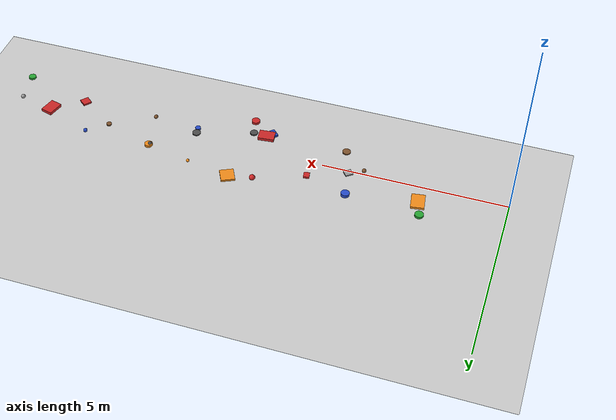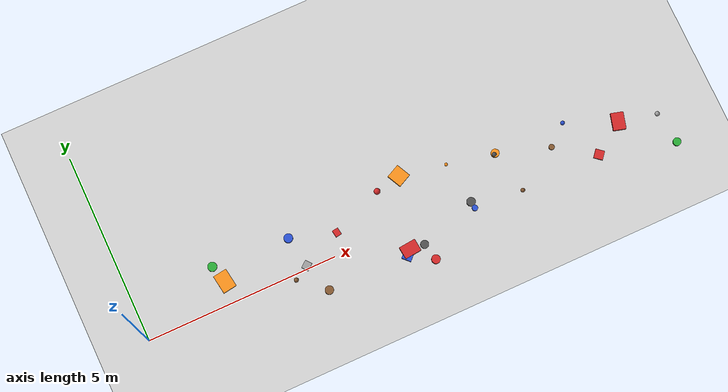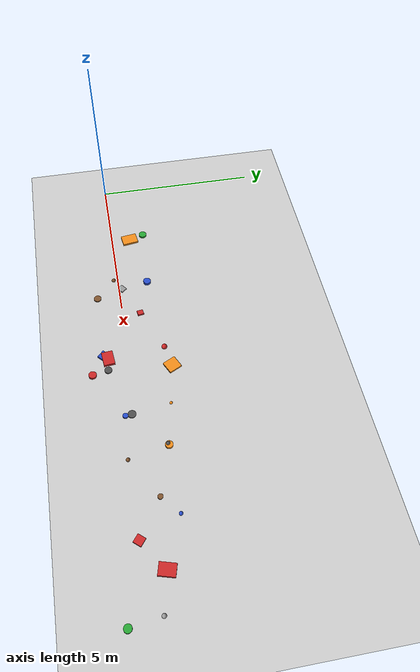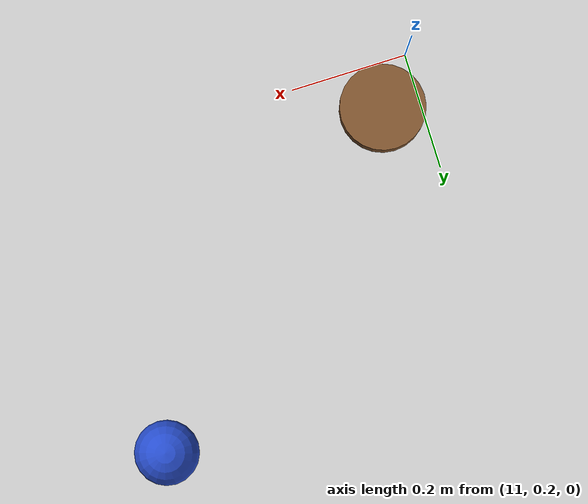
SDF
<?xml version="1.0" ?>
<!-- 由 omni_world.py 自动生成: scene=random seed=4 -->
<sdf version="1.5">
  <world name="random">
    <physics type="ode">
      <type>world</type>
      <max_step_size>0.001</max_step_size>
      <real_time_update_rate>1000</real_time_update_rate>
      <iters>500</iters>
    </physics>
    <include><uri>model://sun</uri></include>
    <include><uri>model://ground_plane</uri></include>
    <model name="r_box_0">
      <static>true</static>
      <pose>5.291 0.531 0.027 0.0000 0.0000 1.7260</pose>
      <link name="link">
        <collision name="collision">
          <geometry><box><size>0.182 0.157 0.054</size></box></geometry>
          <surface><friction><ode><mu>1.0</mu><mu2>1.0</mu2></ode></friction></surface>
        </collision>
        <visual name="visual">
          <geometry><box><size>0.182 0.157 0.054</size></box></geometry>
          <material><script><uri>file://media/materials/scripts/gazebo.material</uri>
            <name>Gazebo/Red</name></script></material>
        </visual>
      </link>
    </model>
    <model name="r_box_1">
      <static>true</static>
      <pose>4.274 0.088 0.020 0.0000 0.0000 0.6736</pose>
      <link name="link">
        <collision name="collision">
          <geometry><box><size>0.210 0.187 0.039</size></box></geometry>
          <surface><friction><ode><mu>1.0</mu><mu2>1.0</mu2></ode></friction></surface>
        </collision>
        <visual name="visual">
          <geometry><box><size>0.210 0.187 0.039</size></box></geometry>
          <material><script><uri>file://media/materials/scripts/gazebo.material</uri>
            <name>Gazebo/Grey</name></script></material>
        </visual>
      </link>
    </model>
    <model name="r_sph_2">
      <static>true</static>
      <pose>11.583 0.721 0.017 0 0 0</pose>
      <link name="link">
        <collision name="collision">
          <geometry><sphere><radius>0.055</radius></sphere></geometry>
          <surface><friction><ode><mu>1.0</mu><mu2>1.0</mu2></ode></friction></surface>
        </collision>
        <visual name="visual">
          <geometry><sphere><radius>0.055</radius></sphere></geometry>
          <material><script><uri>file://media/materials/scripts/gazebo.material</uri>
            <name>Gazebo/Blue</name></script></material>
        </visual>
      </link>
    </model>
    <model name="r_box_3">
      <static>true</static>
      <pose>12.060 -0.390 0.024 0.0000 0.0000 0.8796</pose>
      <link name="link">
        <collision name="collision">
          <geometry><box><size>0.237 0.237 0.047</size></box></geometry>
          <surface><friction><ode><mu>1.0</mu><mu2>1.0</mu2></ode></friction></surface>
        </collision>
        <visual name="visual">
          <geometry><box><size>0.237 0.237 0.047</size></box></geometry>
          <material><script><uri>file://media/materials/scripts/gazebo.material</uri>
            <name>Gazebo/Red</name></script></material>
        </visual>
      </link>
    </model>
    <model name="r_box_4">
      <static>true</static>
      <pose>12.861 0.174 0.041 0.0000 0.0000 1.3004</pose>
      <link name="link">
        <collision name="collision">
          <geometry><box><size>0.447 0.328 0.082</size></box></geometry>
          <surface><friction><ode><mu>1.0</mu><mu2>1.0</mu2></ode></friction></surface>
        </collision>
        <visual name="visual">
          <geometry><box><size>0.447 0.328 0.082</size></box></geometry>
          <material><script><uri>file://media/materials/scripts/gazebo.material</uri>
            <name>Gazebo/Red</name></script></material>
        </visual>
      </link>
    </model>
    <model name="r_cyl_5">
      <static>true</static>
      <pose>7.142 -0.640 0.019 0 0 0</pose>
      <link name="link">
        <collision name="collision">
          <geometry><cylinder><radius>0.106</radius><length>0.038</length></cylinder></geometry>
          <surface><friction><ode><mu>1.0</mu><mu2>1.0</mu2></ode></friction></surface>
        </collision>
        <visual name="visual">
          <geometry><cylinder><radius>0.106</radius><length>0.038</length></cylinder></geometry>
          <material><script><uri>file://media/materials/scripts/gazebo.material</uri>
            <name>Gazebo/DarkGrey</name></script></material>
        </visual>
      </link>
    </model>
    <model name="r_box_6">
      <static>true</static>
      <pose>7.283 1.194 0.028 0.0000 0.0000 0.4557</pose>
      <link name="link">
        <collision name="collision">
          <geometry><box><size>0.377 0.395 0.056</size></box></geometry>
          <surface><friction><ode><mu>1.0</mu><mu2>1.0</mu2></ode></friction></surface>
        </collision>
        <visual name="visual">
          <geometry><box><size>0.377 0.395 0.056</size></box></geometry>
          <material><script><uri>file://media/materials/scripts/gazebo.material</uri>
            <name>Gazebo/Orange</name></script></material>
        </visual>
      </link>
    </model>
    <model name="r_box_7">
      <static>true</static>
      <pose>6.660 -0.714 0.032 0.0000 0.0000 2.3466</pose>
      <link name="link">
        <collision name="collision">
          <geometry><box><size>0.247 0.275 0.064</size></box></geometry>
          <surface><friction><ode><mu>1.0</mu><mu2>1.0</mu2></ode></friction></surface>
        </collision>
        <visual name="visual">
          <geometry><box><size>0.247 0.275 0.064</size></box></geometry>
          <material><script><uri>file://media/materials/scripts/gazebo.material</uri>
            <name>Gazebo/Blue</name></script></material>
        </visual>
      </link>
    </model>
    <model name="r_sph_8">
      <static>true</static>
      <pose>8.482 0.970 0.014 0 0 0</pose>
      <link name="link">
        <collision name="collision">
          <geometry><sphere><radius>0.043</radius></sphere></geometry>
          <surface><friction><ode><mu>1.0</mu><mu2>1.0</mu2></ode></friction></surface>
        </collision>
        <visual name="visual">
          <geometry><sphere><radius>0.043</radius></sphere></geometry>
          <material><script><uri>file://media/materials/scripts/gazebo.material</uri>
            <name>Gazebo/Orange</name></script></material>
        </visual>
      </link>
    </model>
    <model name="r_cyl_9">
      <static>true</static>
      <pose>11.065 0.277 0.018 0 0 0</pose>
      <link name="link">
        <collision name="collision">
          <geometry><cylinder><radius>0.073</radius><length>0.037</length></cylinder></geometry>
          <surface><friction><ode><mu>1.0</mu><mu2>1.0</mu2></ode></friction></surface>
        </collision>
        <visual name="visual">
          <geometry><cylinder><radius>0.073</radius><length>0.037</length></cylinder></geometry>
          <material><script><uri>file://media/materials/scripts/gazebo.material</uri>
            <name>Gazebo/Brown</name></script></material>
        </visual>
      </link>
    </model>
    <model name="r_cyl_10">
      <static>true</static>
      <pose>7.238 -1.097 0.034 0 0 0</pose>
      <link name="link">
        <collision name="collision">
          <geometry><cylinder><radius>0.113</radius><length>0.069</length></cylinder></geometry>
          <surface><friction><ode><mu>1.0</mu><mu2>1.0</mu2></ode></friction></surface>
        </collision>
        <visual name="visual">
          <geometry><cylinder><radius>0.113</radius><length>0.069</length></cylinder></geometry>
          <material><script><uri>file://media/materials/scripts/gazebo.material</uri>
            <name>Gazebo/Red</name></script></material>
        </visual>
      </link>
    </model>
    <model name="r_sph_11">
      <static>true</static>
      <pose>9.940 -0.415 0.021 0 0 0</pose>
      <link name="link">
        <collision name="collision">
          <geometry><sphere><radius>0.056</radius></sphere></geometry>
          <surface><friction><ode><mu>1.0</mu><mu2>1.0</mu2></ode></friction></surface>
        </collision>
        <visual name="visual">
          <geometry><sphere><radius>0.056</radius></sphere></geometry>
          <material><script><uri>file://media/materials/scripts/gazebo.material</uri>
            <name>Gazebo/Brown</name></script></material>
        </visual>
      </link>
    </model>
    <model name="r_sph_12">
      <static>true</static>
      <pose>6.630 1.064 0.032 0 0 0</pose>
      <link name="link">
        <collision name="collision">
          <geometry><sphere><radius>0.081</radius></sphere></geometry>
          <surface><friction><ode><mu>1.0</mu><mu2>1.0</mu2></ode></friction></surface>
        </collision>
        <visual name="visual">
          <geometry><sphere><radius>0.081</radius></sphere></geometry>
          <material><script><uri>file://media/materials/scripts/gazebo.material</uri>
            <name>Gazebo/Red</name></script></material>
        </visual>
      </link>
    </model>
    <model name="r_sph_13">
      <static>true</static>
      <pose>3.893 -0.134 0.015 0 0 0</pose>
      <link name="link">
        <collision name="collision">
          <geometry><sphere><radius>0.059</radius></sphere></geometry>
          <surface><friction><ode><mu>1.0</mu><mu2>1.0</mu2></ode></friction></surface>
        </collision>
        <visual name="visual">
          <geometry><sphere><radius>0.059</radius></sphere></geometry>
          <material><script><uri>file://media/materials/scripts/gazebo.material</uri>
            <name>Gazebo/Brown</name></script></material>
        </visual>
      </link>
    </model>
    <model name="r_cyl_14">
      <static>true</static>
      <pose>8.664 -0.328 0.026 0 0 0</pose>
      <link name="link">
        <collision name="collision">
          <geometry><cylinder><radius>0.076</radius><length>0.052</length></cylinder></geometry>
          <surface><friction><ode><mu>1.0</mu><mu2>1.0</mu2></ode></friction></surface>
        </collision>
        <visual name="visual">
          <geometry><cylinder><radius>0.076</radius><length>0.052</length></cylinder></geometry>
          <material><script><uri>file://media/materials/scripts/gazebo.material</uri>
            <name>Gazebo/Blue</name></script></material>
        </visual>
      </link>
    </model>
    <model name="r_cyl_15">
      <static>true</static>
      <pose>8.643 -0.146 0.017 0 0 0</pose>
      <link name="link">
        <collision name="collision">
          <geometry><cylinder><radius>0.114</radius><length>0.035</length></cylinder></geometry>
          <surface><friction><ode><mu>1.0</mu><mu2>1.0</mu2></ode></friction></surface>
        </collision>
        <visual name="visual">
          <geometry><cylinder><radius>0.114</radius><length>0.035</length></cylinder></geometry>
          <material><script><uri>file://media/materials/scripts/gazebo.material</uri>
            <name>Gazebo/DarkGrey</name></script></material>
        </visual>
      </link>
    </model>
    <model name="r_box_16">
      <static>true</static>
      <pose>2.278 0.569 0.031 0.0000 0.0000 1.7160</pose>
      <link name="link">
        <collision name="collision">
          <geometry><box><size>0.490 0.362 0.062</size></box></geometry>
          <surface><friction><ode><mu>1.0</mu><mu2>1.0</mu2></ode></friction></surface>
        </collision>
        <visual name="visual">
          <geometry><box><size>0.490 0.362 0.062</size></box></geometry>
          <material><script><uri>file://media/materials/scripts/gazebo.material</uri>
            <name>Gazebo/Orange</name></script></material>
        </visual>
      </link>
    </model>
    <model name="r_cyl_17">
      <static>true</static>
      <pose>13.970 -0.907 0.029 0 0 0</pose>
      <link name="link">
        <collision name="collision">
          <geometry><cylinder><radius>0.104</radius><length>0.057</length></cylinder></geometry>
          <surface><friction><ode><mu>1.0</mu><mu2>1.0</mu2></ode></friction></surface>
        </collision>
        <visual name="visual">
          <geometry><cylinder><radius>0.104</radius><length>0.057</length></cylinder></geometry>
          <material><script><uri>file://media/materials/scripts/gazebo.material</uri>
            <name>Gazebo/Green</name></script></material>
        </visual>
      </link>
    </model>
    <model name="r_sph_18">
      <static>true</static>
      <pose>13.846 -0.053 0.018 0 0 0</pose>
      <link name="link">
        <collision name="collision">
          <geometry><sphere><radius>0.061</radius></sphere></geometry>
          <surface><friction><ode><mu>1.0</mu><mu2>1.0</mu2></ode></friction></surface>
        </collision>
        <visual name="visual">
          <geometry><sphere><radius>0.061</radius></sphere></geometry>
          <material><script><uri>file://media/materials/scripts/gazebo.material</uri>
            <name>Gazebo/Grey</name></script></material>
        </visual>
      </link>
    </model>
    <model name="r_box_19">
      <static>true</static>
      <pose>6.765 -0.603 0.041 0.0000 0.0000 0.0994</pose>
      <link name="link">
        <collision name="collision">
          <geometry><box><size>0.441 0.325 0.082</size></box></geometry>
          <surface><friction><ode><mu>1.0</mu><mu2>1.0</mu2></ode></friction></surface>
        </collision>
        <visual name="visual">
          <geometry><box><size>0.441 0.325 0.082</size></box></geometry>
          <material><script><uri>file://media/materials/scripts/gazebo.material</uri>
            <name>Gazebo/Red</name></script></material>
        </visual>
      </link>
    </model>
    <model name="r_cyl_20">
      <static>true</static>
      <pose>4.530 -0.701 0.018 0 0 0</pose>
      <link name="link">
        <collision name="collision">
          <geometry><cylinder><radius>0.111</radius><length>0.036</length></cylinder></geometry>
          <surface><friction><ode><mu>1.0</mu><mu2>1.0</mu2></ode></friction></surface>
        </collision>
        <visual name="visual">
          <geometry><cylinder><radius>0.111</radius><length>0.036</length></cylinder></geometry>
          <material><script><uri>file://media/materials/scripts/gazebo.material</uri>
            <name>Gazebo/Brown</name></script></material>
        </visual>
      </link>
    </model>
    <model name="r_cyl_21">
      <static>true</static>
      <pose>2.141 1.027 0.030 0 0 0</pose>
      <link name="link">
        <collision name="collision">
          <geometry><cylinder><radius>0.119</radius><length>0.060</length></cylinder></geometry>
          <surface><friction><ode><mu>1.0</mu><mu2>1.0</mu2></ode></friction></surface>
        </collision>
        <visual name="visual">
          <geometry><cylinder><radius>0.119</radius><length>0.060</length></cylinder></geometry>
          <material><script><uri>file://media/materials/scripts/gazebo.material</uri>
            <name>Gazebo/Green</name></script></material>
        </visual>
      </link>
    </model>
    <model name="r_sph_22">
      <static>true</static>
      <pose>9.675 0.698 0.036 0 0 0</pose>
      <link name="link">
        <collision name="collision">
          <geometry><sphere><radius>0.065</radius></sphere></geometry>
          <surface><friction><ode><mu>1.0</mu><mu2>1.0</mu2></ode></friction></surface>
        </collision>
        <visual name="visual">
          <geometry><sphere><radius>0.065</radius></sphere></geometry>
          <material><script><uri>file://media/materials/scripts/gazebo.material</uri>
            <name>Gazebo/DarkGrey</name></script></material>
        </visual>
      </link>
    </model>
    <model name="r_cyl_23">
      <static>true</static>
      <pose>4.137 0.897 0.041 0 0 0</pose>
      <link name="link">
        <collision name="collision">
          <geometry><cylinder><radius>0.115</radius><length>0.083</length></cylinder></geometry>
          <surface><friction><ode><mu>1.0</mu><mu2>1.0</mu2></ode></friction></surface>
        </collision>
        <visual name="visual">
          <geometry><cylinder><radius>0.115</radius><length>0.083</length></cylinder></geometry>
          <material><script><uri>file://media/materials/scripts/gazebo.material</uri>
            <name>Gazebo/Blue</name></script></material>
        </visual>
      </link>
    </model>
    <model name="r_cyl_24">
      <static>true</static>
      <pose>9.711 0.719 0.032 0 0 0</pose>
      <link name="link">
        <collision name="collision">
          <geometry><cylinder><radius>0.107</radius><length>0.065</length></cylinder></geometry>
          <surface><friction><ode><mu>1.0</mu><mu2>1.0</mu2></ode></friction></surface>
        </collision>
        <visual name="visual">
          <geometry><cylinder><radius>0.107</radius><length>0.065</length></cylinder></geometry>
          <material><script><uri>file://media/materials/scripts/gazebo.material</uri>
            <name>Gazebo/Orange</name></script></material>
        </visual>
      </link>
    </model>

  </world>
</sdf>
